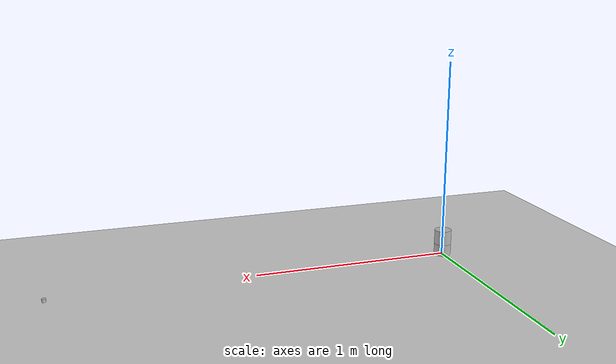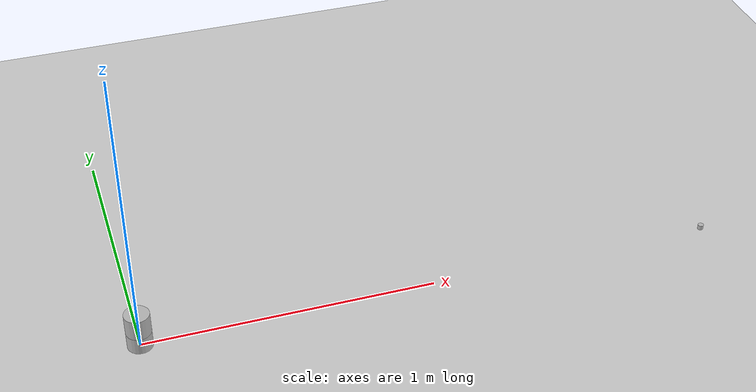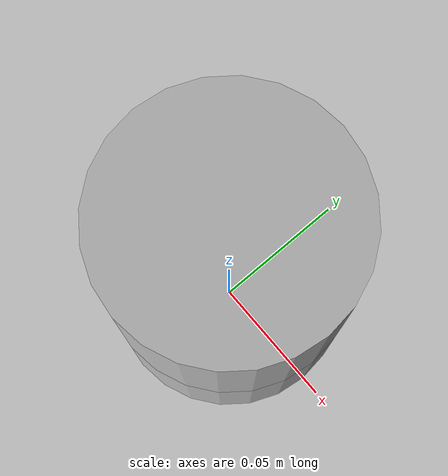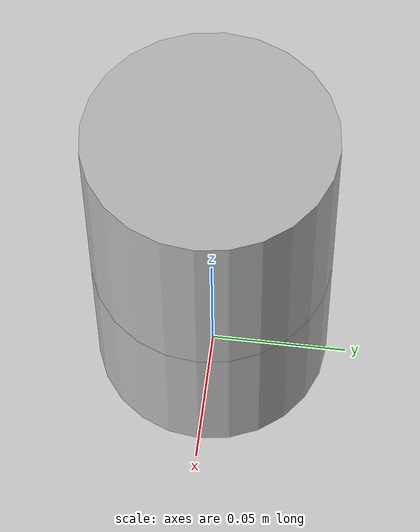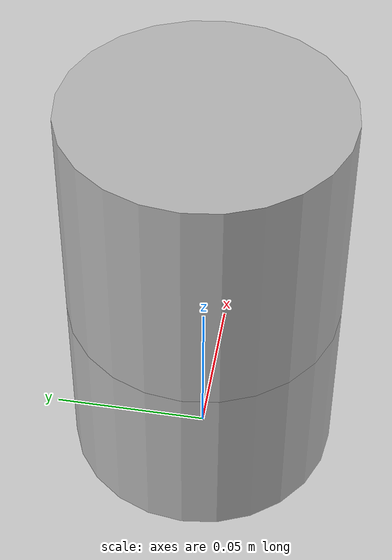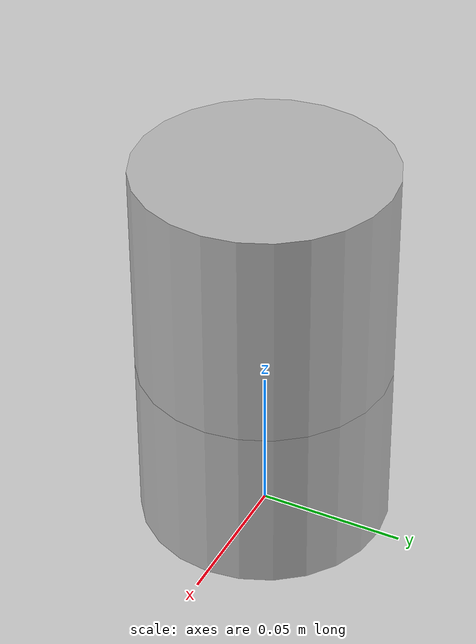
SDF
<?xml version="1.0" ?>
<sdf version="1.5">
  <world name="default">
    <scene>
      <shadows>false</shadows>
    </scene>

    <!-- My Lidar -->

    <!-- My 360 Lidar -->
    <include>
      <uri>model://lidar_360</uri>
      <pose>2 0 0 0 0 0</pose>
    </include>

    <!-- A global light source -->
    <include>
      <uri>model://sun</uri>
    </include>

    <!-- A ground plane -->
    <include>
      <uri>model://ground_plane</uri>
    </include>

    <model name="velodyne_hdl-32">
      <!-- Give the base link a unique name -->
      <link name="base">

        <!-- Offset the base by half the lenght of the cylinder -->
        <pose>0 0 0.029335 0 0 0</pose>

        <inertial>
          <mass>1.2</mass>
          <inertia>
            <ixx>0.001087473</ixx>
            <iyy>0.001087473</iyy>
            <izz>0.001092437</izz>
            <ixy>0</ixy>
            <ixz>0</ixz>
            <iyz>0</iyz>
          </inertia>
        </inertial>

        <collision name="base_collision">
          <geometry>
            <cylinder>
              <!-- Radius and length provided by Velodyne -->
              <radius>.04267</radius>
              <length>.05867</length>
            </cylinder>
          </geometry>
        </collision>

        <!-- The visual is mostly a copy of the collision -->
        <visual name="base_visual">
          <geometry>
            <cylinder>
              <radius>.04267</radius>
              <length>.05867</length>
            </cylinder>
          </geometry>
        </visual>
      </link>

      <!-- Give the base link a unique name -->
      <link name="top">

        <!-- Add a ray sensor, and give it a name -->
        <sensor type="ray" name="sensor">

          <pose>0 0 -0.004645 1.5707 0 0</pose>

          <!-- Enable visualization to see the rays in the GUI -->
          <visualize>true</visualize>

          <!-- Set the update rate of the sensor -->
          <update_rate>30</update_rate>

          <!-- Ray thing thong-->
          <ray>

            <noise>
              <!-- Use gaussian noise -->
              <type>gaussian</type>
              <mean>0.0</mean>
              <stddev>0.1</stddev>
            </noise>
            <!-- The scan element contains the horizontal and vertical beams.
                We are leaving out the vertical beams for this tutorial. -->
            <scan>

              <!-- The horizontal beams -->
              <horizontal>
                <!-- The velodyne has 32 beams(samples) -->
                <samples>1</samples>

                <resolution>1</resolution>

                <!-- Minimum angle in radians -->
                <min_angle>0.785398</min_angle>

                <!-- Follow cartesian angle of blue-red axis should be the x and y axis-->

                <!-- Maximum angle in radians -->
                <max_angle>0.785398</max_angle>
              </horizontal>
            </scan>

            <!-- Range defines characteristics of an individual beam -->
            <range>

              <!-- Minimum distance of the beam -->
              <min>0.05</min>

              <!-- Maximum distance of the beam -->
              <max>70</max>

              <!-- Linear resolution of the beam -->
              <resolution>0.02</resolution>
            </range>
          </ray>
        </sensor>

        <!-- Vertically offset the top cylinder by the length of the bottom
            cylinder and half the length of this cylinder. -->
        <pose>0 0 0.095455 0 0 0</pose>

        <inertial>
          <mass>0.1</mass>
          <inertia>
            <ixx>0.000090623</ixx>
            <iyy>0.000090623</iyy>
            <izz>0.000091036</izz>
            <ixy>0</ixy>
            <ixz>0</ixz>
            <iyz>0</iyz>
          </inertia>
        </inertial>

        <collision name="top_collision">
          <geometry>
            <cylinder>
              <!-- Radius and length provided by Velodyne -->
              <radius>0.04267</radius>
              <length>0.07357</length>
            </cylinder>
          </geometry>
        </collision>

        <!-- The visual is mostly a copy of the collision -->
        <visual name="top_visual">
          <geometry>
            <cylinder>
              <radius>0.04267</radius>
              <length>0.07357</length>
            </cylinder>
          </geometry>
        </visual>
      </link>

      <joint type="revolute" name="joint">

        <!-- Position the joint at the bottom of the top link -->
        <pose>0 0 -0.036785 0 0 0</pose>

        <!-- Use the base link as the parent of the joint -->
        <parent>base</parent>

        <!-- Use the top link as the child of the joint -->
        <child>top</child>

        <!-- The axis defines the joint's degree of freedom -->
        <axis>

          <!-- Revolve around the z-axis -->
          <xyz>0 0 1</xyz>

          <!-- Limit refers to the range of motion of the joint -->
          <limit>

            <!-- Use a very large number to indicate a continuous revolution -->
            <lower>-10000000000000000</lower>
            <upper>10000000000000000</upper>
          </limit>
        </axis>
      </joint>
    </model>
  </world>
</sdf>

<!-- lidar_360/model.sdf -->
<sdf version="1.6">
  <model name="lidar_360">
    <pose>0 0 0 0 0 0</pose>

    <link name="lidar_360_link">
      <visual name="visual">
        <geometry>
          <cylinder>
            <radius>0.01</radius>
            <length>0.03</length>
          </cylinder>
        </geometry>
      </visual>
      <inertial>
        <mass>0.0000000000000001</mass>
        <inertia>
          <ixx>0.0000000000000001</ixx>
          <ixy>0</ixy>
          <ixz>0</ixz>
          <iyy>0.0000000000000001</iyy>
          <iyz>0</iyz>
          <izz>0.0000000000000001</izz>
        </inertia>
      </inertial>

      <sensor type="ray" name="sensor">
        <pose>0 0 0.01 0 0 0</pose>
        <visualize>true</visualize>
        <update_rate>10</update_rate>
        <ray>

          <scan>
            <horizontal>
              <samples>18</samples>
              <resolution>1</resolution>
              <min_angle>0</min_angle>
              <!-- Angles for samples size -->
              <max_angle>-5.93411945678</max_angle>
            </horizontal>
          </scan>

          <range>
            <min>0.35</min>
            <max>50</max>
            <resolution>0.02</resolution>
          </range>

        </ray>
        <plugin name="sensor_plugin" filename="libgazebo_ros_laser.so">
          <topicName>/mavros/obstacle/send</topicName>
          <frameName>lidar_360</frameName>
        </plugin>
      </sensor>
    </link>
  </model>
</sdf>
